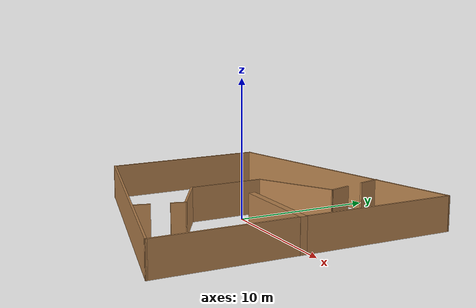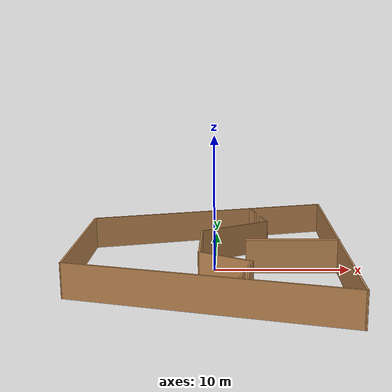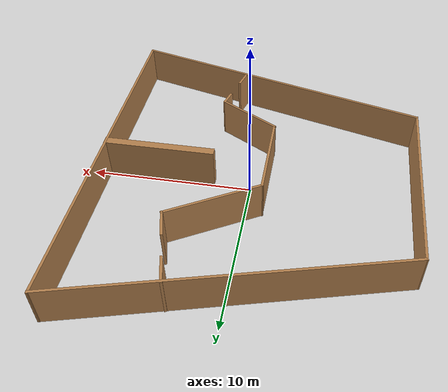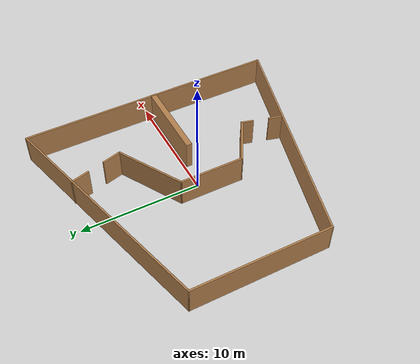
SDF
<?xml version='1.0'?>
<sdf version='1.6'>
  <model name='building'>
    <pose frame=''>-0.44294 0.030069 0 0 -0 0</pose>
    <link name='Wall_12'>
      <pose frame=''>3.91771 7.04943 0 0 -0 -1.309</pose>
      <visual name='Wall_12_Visual_0'>
        <pose frame=''>-1.54856 0 1.25 0 -0 0</pose>
        <geometry>
          <box>
            <size>1.65287 0.15 2.5</size>
          </box>
        </geometry>
        <material>
          <script>
            <uri>file://media/materials/scripts/gazebo.material</uri>
            <name>Gazebo/Wood</name>
          </script>
          <ambient>1 1 1 1</ambient>
        </material>
        <meta>
          <layer>0</layer>
        </meta>
      </visual>
      <collision name='Wall_12_Collision_0'>
        <geometry>
          <box>
            <size>1.65287 0.15 2.5</size>
          </box>
        </geometry>
        <pose frame=''>-1.54856 0 1.25 0 -0 0</pose>
      </collision>
      <visual name='Wall_12_Visual_1'>
        <pose frame=''>1.52644 0 1.25 0 -0 0</pose>
        <geometry>
          <box>
            <size>1.69713 0.15 2.5</size>
          </box>
        </geometry>
        <material>
          <script>
            <uri>file://media/materials/scripts/gazebo.material</uri>
            <name>Gazebo/Wood</name>
          </script>
          <ambient>1 1 1 1</ambient>
        </material>
        <meta>
          <layer>0</layer>
        </meta>
      </visual>
      <collision name='Wall_12_Collision_1'>
        <geometry>
          <box>
            <size>1.69713 0.15 2.5</size>
          </box>
        </geometry>
        <pose frame=''>1.52644 0 1.25 0 -0 0</pose>
      </collision>
    </link>
    <link name='Wall_13'>
      <collision name='Wall_13_Collision'>
        <geometry>
          <box>
            <size>6 0.15 2.5</size>
          </box>
        </geometry>
        <pose frame=''>0 0 1.25 0 -0 0</pose>
      </collision>
      <visual name='Wall_13_Visual'>
        <pose frame=''>0 0 1.25 0 -0 0</pose>
        <geometry>
          <box>
            <size>6 0.15 2.5</size>
          </box>
        </geometry>
        <material>
          <script>
            <uri>file://media/materials/scripts/gazebo.material</uri>
            <name>Gazebo/Wood</name>
          </script>
          <ambient>1 1 1 1</ambient>
        </material>
        <meta>
          <layer>0</layer>
        </meta>
      </visual>
      <pose frame=''>1.97986 3.3653 0 0 -0 -2.61799</pose>
    </link>
    <link name='Wall_14'>
      <collision name='Wall_14_Collision'>
        <geometry>
          <box>
            <size>5.5 0.15 2.5</size>
          </box>
        </geometry>
        <pose frame=''>0 0 1.25 0 -0 0</pose>
      </collision>
      <visual name='Wall_14_Visual'>
        <pose frame=''>0 0 1.25 0 -0 0</pose>
        <geometry>
          <box>
            <size>5.5 0.15 2.5</size>
          </box>
        </geometry>
        <material>
          <script>
            <uri>file://media/materials/scripts/gazebo.material</uri>
            <name>Gazebo/Wood</name>
          </script>
          <ambient>1 1 1 1</ambient>
        </material>
        <meta>
          <layer>0</layer>
        </meta>
      </visual>
      <pose frame=''>-0.55326 -0.772202 0 0 -0 -1.5708</pose>
    </link>
    <link name='Wall_15'>
      <collision name='Wall_15_Collision'>
        <geometry>
          <box>
            <size>4.25 0.15 2.5</size>
          </box>
        </geometry>
        <pose frame=''>0 0 1.25 0 -0 0</pose>
      </collision>
      <visual name='Wall_15_Visual'>
        <pose frame=''>0 0 1.25 0 -0 0</pose>
        <geometry>
          <box>
            <size>4.25 0.15 2.5</size>
          </box>
        </geometry>
        <material>
          <script>
            <uri>file://media/materials/scripts/gazebo.material</uri>
            <name>Gazebo/Wood</name>
          </script>
          <ambient>1 1 1 1</ambient>
        </material>
        <meta>
          <layer>0</layer>
        </meta>
      </visual>
      <pose frame=''>1.22209 -4.4722 0 0 -0 -0.523599</pose>
    </link>
    <link name='Wall_17'>
      <pose frame=''>2.56392 -7.11513 0 0 -0 -1.8326</pose>
      <visual name='Wall_17_Visual_0'>
        <pose frame=''>-1.2149 0 1.25 0 -0 0</pose>
        <geometry>
          <box>
            <size>1.0702 0.15 2.5</size>
          </box>
        </geometry>
        <material>
          <script>
            <uri>file://media/materials/scripts/gazebo.material</uri>
            <name>Gazebo/Wood</name>
          </script>
          <ambient>1 1 1 1</ambient>
        </material>
        <meta>
          <layer>0</layer>
        </meta>
      </visual>
      <collision name='Wall_17_Collision_0'>
        <geometry>
          <box>
            <size>1.0702 0.15 2.5</size>
          </box>
        </geometry>
        <pose frame=''>-1.2149 0 1.25 0 -0 0</pose>
      </collision>
      <visual name='Wall_17_Visual_1'>
        <pose frame=''>1.1851 0 1.25 0 -0 0</pose>
        <geometry>
          <box>
            <size>1.1298 0.15 2.5</size>
          </box>
        </geometry>
        <material>
          <script>
            <uri>file://media/materials/scripts/gazebo.material</uri>
            <name>Gazebo/Wood</name>
          </script>
          <ambient>1 1 1 1</ambient>
        </material>
        <meta>
          <layer>0</layer>
        </meta>
      </visual>
      <collision name='Wall_17_Collision_1'>
        <geometry>
          <box>
            <size>1.1298 0.15 2.5</size>
          </box>
        </geometry>
        <pose frame=''>1.1851 0 1.25 0 -0 0</pose>
      </collision>
    </link>
    <link name='Wall_19'>
      <collision name='Wall_19_Collision'>
        <geometry>
          <box>
            <size>6.85 0.5 2.5</size>
          </box>
        </geometry>
        <pose frame=''>0 0 1.25 0 -0 0</pose>
      </collision>
      <visual name='Wall_19_Visual'>
        <pose frame=''>0 0 1.25 0 -0 0</pose>
        <geometry>
          <box>
            <size>6.85 0.5 2.5</size>
          </box>
        </geometry>
        <material>
          <script>
            <uri>file://media/materials/scripts/gazebo.material</uri>
            <name>Gazebo/Wood</name>
          </script>
          <ambient>1 1 1 1</ambient>
        </material>
        <meta>
          <layer>0</layer>
        </meta>
      </visual>
      <pose frame=''>6.13396 -0.457069 0 0 -0 3.14159</pose>
    </link>
    <link name='Wall_5'>
      <collision name='Wall_5_Collision'>
        <geometry>
          <box>
            <size>19.75 0.15 2.5</size>
          </box>
        </geometry>
        <pose frame=''>0 0 1.25 0 -0 0</pose>
      </collision>
      <visual name='Wall_5_Visual'>
        <pose frame=''>0 0 1.25 0 -0 0</pose>
        <geometry>
          <box>
            <size>19.75 0.15 2.5</size>
          </box>
        </geometry>
        <material>
          <script>
            <uri>file://media/materials/scripts/gazebo.material</uri>
            <name>Gazebo/Wood</name>
          </script>
          <ambient>1 1 1 1</ambient>
        </material>
        <meta>
          <layer>0</layer>
        </meta>
      </visual>
      <pose frame=''>-0.001029 -8.33643 0 0 -0 2.87979</pose>
    </link>
    <link name='Wall_7'>
      <collision name='Wall_7_Collision'>
        <geometry>
          <box>
            <size>11.75 0.15 2.5</size>
          </box>
        </geometry>
        <pose frame=''>0 0 1.25 0 -0 0</pose>
      </collision>
      <visual name='Wall_7_Visual'>
        <pose frame=''>0 0 1.25 0 -0 0</pose>
        <geometry>
          <box>
            <size>11.75 0.15 2.5</size>
          </box>
        </geometry>
        <material>
          <script>
            <uri>file://media/materials/scripts/gazebo.material</uri>
            <name>Gazebo/Wood</name>
          </script>
          <ambient>1 1 1 1</ambient>
        </material>
        <meta>
          <layer>0</layer>
        </meta>
      </visual>
      <pose frame=''>-9.4671 -0 0 0 -0 1.5708</pose>
    </link>
    <link name='Wall_8'>
      <collision name='Wall_8_Collision'>
        <geometry>
          <box>
            <size>19.75 0.15 2.5</size>
          </box>
        </geometry>
        <pose frame=''>0 0 1.25 0 -0 0</pose>
      </collision>
      <visual name='Wall_8_Visual'>
        <pose frame=''>0 0 1.25 0 -0 0</pose>
        <geometry>
          <box>
            <size>19.75 0.15 2.5</size>
          </box>
        </geometry>
        <material>
          <script>
            <uri>file://media/materials/scripts/gazebo.material</uri>
            <name>Gazebo/Wood</name>
          </script>
          <ambient>1 1 1 1</ambient>
        </material>
        <meta>
          <layer>0</layer>
        </meta>
      </visual>
      <pose frame=''>-0.001029 8.33643 0 0 -0 0.261799</pose>
    </link>
    <link name='Wall_9'>
      <collision name='Wall_9_Collision'>
        <geometry>
          <box>
            <size>21.8957 0.15 2.5</size>
          </box>
        </geometry>
        <pose frame=''>0 0 1.25 0 -0 0</pose>
      </collision>
      <visual name='Wall_9_Visual'>
        <pose frame=''>0 0 1.25 0 -0 0</pose>
        <geometry>
          <box>
            <size>21.8957 0.15 2.5</size>
          </box>
        </geometry>
        <material>
          <script>
            <uri>file://media/materials/scripts/gazebo.material</uri>
            <name>Gazebo/Wood</name>
          </script>
          <ambient>1 1 1 1</ambient>
        </material>
        <meta>
          <layer>0</layer>
        </meta>
      </visual>
      <pose frame=''>9.46504 -0 0 0 -0 -1.5708</pose>
    </link>
    <static>1</static>
  </model>
</sdf>
